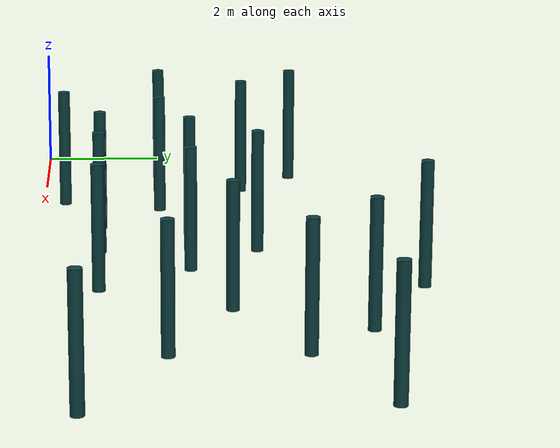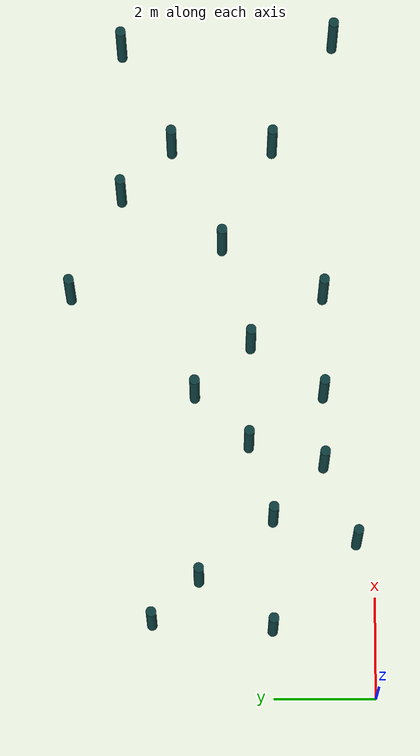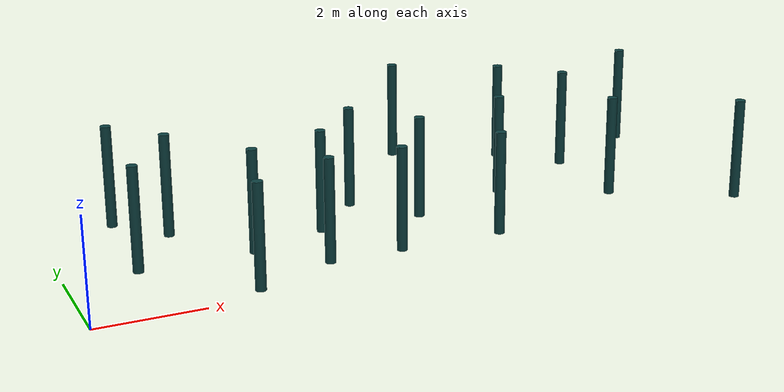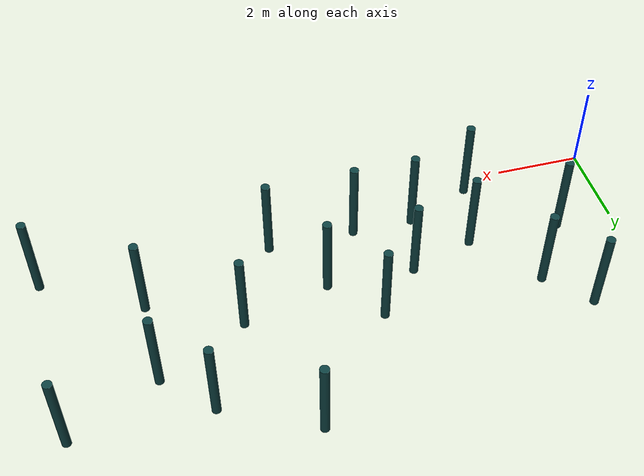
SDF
<sdf version="1.6">
 <world name="default">
  <model name="obstacle">
   <link name="link">
    <inertial>
     <mass>112.569</mass>
     <inertia><ixx>33.2512</ixx><ixy>0</ixy><ixz>0</ixz><iyy>33.2512</iyy><iyz>0</iyz><izz>0.537779</izz></inertia>
    </inertial>
    <visual name="visual">
     <geometry><cylinder><radius>0.1</radius><length>2</length></cylinder></geometry>
     <material>
      <script><name>Gazebo/Grey</name><uri>file://media/materials/scripts/gazebo.material</uri></script>
      <shader type="pixel"><normal_map>__default__</normal_map></shader>
      <ambient>0.05 0.25 0.25 1</ambient>
      <diffuse>0.3 0.3 0.3 1</diffuse>
      <specular>0.01 0.01 0.01 1</specular>
      <emissive>0.1 0.1 0.1 1</emissive>
      <lighting>1</lighting>
     </material>
    </visual>
    <collision name="collision">
     <geometry><cylinder><radius>0.097748</radius><length>1.87509</length></cylinder></geometry>
     <surface>
      <friction>
       <ode><mu>1</mu><mu2>1</mu2><fdir1>0 0 0</fdir1><slip1>0</slip1><slip2>0</slip2></ode>
       <torsional>
        <coefficient>1</coefficient>
        <patch_radius>0</patch_radius>
        <surface_radius>0</surface_radius>
        <use_patch_radius>1</use_patch_radius>
        <ode><slip>0</slip></ode>
       </torsional>
      </friction>
      <bounce><restitution_coefficient>0</restitution_coefficient><threshold>1e+06</threshold></bounce>
      <contact>
       <collide_without_contact>0</collide_without_contact>
       <collide_without_contact_bitmask>1</collide_without_contact_bitmask>
       <collide_bitmask>1</collide_bitmask>
       <ode>
        <soft_cfm>0</soft_cfm>
        <soft_erp>0.2</soft_erp>
        <kp>1e+13</kp>
        <kd>1</kd>
        <max_vel>0.01</max_vel>
        <min_depth>0</min_depth>
       </ode>
       <bullet>
        <split_impulse>1</split_impulse>
        <split_impulse_penetration_threshold>-0.01</split_impulse_penetration_threshold>
        <soft_cfm>0</soft_cfm>
        <soft_erp>0.2</soft_erp>
        <kp>1e+13</kp>
        <kd>1</kd>
       </bullet>
      </contact>
     </surface>
    </collision>
   </link>
   <static>0</static>
   <pose>1.33964 2.01319 0.987545 -2.9e-05 -4.1e-05 0.003651</pose>
  </model>
  <model name="obstacle_clone">
   <link name="link">
    <inertial>
     <mass>112.569</mass>
     <inertia><ixx>33.2512</ixx><ixy>0</ixy><ixz>0</ixz><iyy>33.2512</iyy><iyz>0</iyz><izz>0.537779</izz></inertia>
    </inertial>
    <visual name="visual">
     <geometry><cylinder><radius>0.1</radius><length>2</length></cylinder></geometry>
     <material>
      <script><name>Gazebo/Grey</name><uri>file://media/materials/scripts/gazebo.material</uri></script>
      <shader type="pixel"><normal_map>__default__</normal_map></shader>
      <ambient>0.05 0.25 0.25 1</ambient>
      <diffuse>0.3 0.3 0.3 1</diffuse>
      <specular>0.01 0.01 0.01 1</specular>
      <emissive>0.1 0.1 0.1 1</emissive>
      <lighting>1</lighting>
     </material>
    </visual>
    <collision name="collision">
     <geometry><cylinder><radius>0.097748</radius><length>1.87509</length></cylinder></geometry>
     <surface>
      <friction>
       <ode><mu>1</mu><mu2>1</mu2><fdir1>0 0 0</fdir1><slip1>0</slip1><slip2>0</slip2></ode>
       <torsional>
        <coefficient>1</coefficient>
        <patch_radius>0</patch_radius>
        <surface_radius>0</surface_radius>
        <use_patch_radius>1</use_patch_radius>
        <ode><slip>0</slip></ode>
       </torsional>
      </friction>
      <bounce><restitution_coefficient>0</restitution_coefficient><threshold>1e+06</threshold></bounce>
      <contact>
       <collide_without_contact>0</collide_without_contact>
       <collide_without_contact_bitmask>1</collide_without_contact_bitmask>
       <collide_bitmask>1</collide_bitmask>
       <ode>
        <soft_cfm>0</soft_cfm>
        <soft_erp>0.2</soft_erp>
        <kp>1e+13</kp>
        <kd>1</kd>
        <max_vel>0.01</max_vel>
        <min_depth>0</min_depth>
       </ode>
       <bullet>
        <split_impulse>1</split_impulse>
        <split_impulse_penetration_threshold>-0.01</split_impulse_penetration_threshold>
        <soft_cfm>0</soft_cfm>
        <soft_erp>0.2</soft_erp>
        <kp>1e+13</kp>
        <kd>1</kd>
       </bullet>
      </contact>
     </surface>
    </collision>
   </link>
   <static>0</static>
   <pose>1.459 4.37793 0.987545 -1.9e-05 -4.7e-05 0.003622</pose>
  </model>
  <model name="obstacle_clone_0">
   <link name="link">
    <inertial>
     <mass>112.569</mass>
     <inertia><ixx>33.2512</ixx><ixy>0</ixy><ixz>0</ixz><iyy>33.2512</iyy><iyz>0</iyz><izz>0.537779</izz></inertia>
    </inertial>
    <visual name="visual">
     <geometry><cylinder><radius>0.1</radius><length>2</length></cylinder></geometry>
     <material>
      <script><name>Gazebo/Grey</name><uri>file://media/materials/scripts/gazebo.material</uri></script>
      <shader type="pixel"><normal_map>__default__</normal_map></shader>
      <ambient>0.05 0.25 0.25 1</ambient>
      <diffuse>0.3 0.3 0.3 1</diffuse>
      <specular>0.01 0.01 0.01 1</specular>
      <emissive>0.1 0.1 0.1 1</emissive>
      <lighting>1</lighting>
     </material>
    </visual>
    <collision name="collision">
     <geometry><cylinder><radius>0.097748</radius><length>1.87509</length></cylinder></geometry>
     <surface>
      <friction>
       <ode><mu>1</mu><mu2>1</mu2><fdir1>0 0 0</fdir1><slip1>0</slip1><slip2>0</slip2></ode>
       <torsional>
        <coefficient>1</coefficient>
        <patch_radius>0</patch_radius>
        <surface_radius>0</surface_radius>
        <use_patch_radius>1</use_patch_radius>
        <ode><slip>0</slip></ode>
       </torsional>
      </friction>
      <bounce><restitution_coefficient>0</restitution_coefficient><threshold>1e+06</threshold></bounce>
      <contact>
       <collide_without_contact>0</collide_without_contact>
       <collide_without_contact_bitmask>1</collide_without_contact_bitmask>
       <collide_bitmask>1</collide_bitmask>
       <ode>
        <soft_cfm>0</soft_cfm>
        <soft_erp>0.2</soft_erp>
        <kp>1e+13</kp>
        <kd>1</kd>
        <max_vel>0.01</max_vel>
        <min_depth>0</min_depth>
       </ode>
       <bullet>
        <split_impulse>1</split_impulse>
        <split_impulse_penetration_threshold>-0.01</split_impulse_penetration_threshold>
        <soft_cfm>0</soft_cfm>
        <soft_erp>0.2</soft_erp>
        <kp>1e+13</kp>
        <kd>1</kd>
       </bullet>
      </contact>
     </surface>
    </collision>
   </link>
   <static>0</static>
   <pose>3.50902 1.99999 0.987545 -1.4e-05 -4.5e-05 0.003622</pose>
  </model>
  <model name="obstacle_clone_1">
   <link name="link">
    <inertial>
     <mass>112.569</mass>
     <inertia><ixx>33.2512</ixx><ixy>0</ixy><ixz>0</ixz><iyy>33.2512</iyy><iyz>0</iyz><izz>0.537779</izz></inertia>
    </inertial>
    <visual name="visual">
     <geometry><cylinder><radius>0.1</radius><length>2</length></cylinder></geometry>
     <material>
      <script><name>Gazebo/Grey</name><uri>file://media/materials/scripts/gazebo.material</uri></script>
      <shader type="pixel"><normal_map>__default__</normal_map></shader>
      <ambient>0.05 0.25 0.25 1</ambient>
      <diffuse>0.3 0.3 0.3 1</diffuse>
      <specular>0.01 0.01 0.01 1</specular>
      <emissive>0.1 0.1 0.1 1</emissive>
      <lighting>1</lighting>
     </material>
    </visual>
    <collision name="collision">
     <geometry><cylinder><radius>0.097748</radius><length>1.87509</length></cylinder></geometry>
     <surface>
      <friction>
       <ode><mu>1</mu><mu2>1</mu2><fdir1>0 0 0</fdir1><slip1>0</slip1><slip2>0</slip2></ode>
       <torsional>
        <coefficient>1</coefficient>
        <patch_radius>0</patch_radius>
        <surface_radius>0</surface_radius>
        <use_patch_radius>1</use_patch_radius>
        <ode><slip>0</slip></ode>
       </torsional>
      </friction>
      <bounce><restitution_coefficient>0</restitution_coefficient><threshold>1e+06</threshold></bounce>
      <contact>
       <collide_without_contact>0</collide_without_contact>
       <collide_without_contact_bitmask>1</collide_without_contact_bitmask>
       <collide_bitmask>1</collide_bitmask>
       <ode>
        <soft_cfm>0</soft_cfm>
        <soft_erp>0.2</soft_erp>
        <kp>1e+13</kp>
        <kd>1</kd>
        <max_vel>0.01</max_vel>
        <min_depth>0</min_depth>
       </ode>
       <bullet>
        <split_impulse>1</split_impulse>
        <split_impulse_penetration_threshold>-0.01</split_impulse_penetration_threshold>
        <soft_cfm>0</soft_cfm>
        <soft_erp>0.2</soft_erp>
        <kp>1e+13</kp>
        <kd>1</kd>
       </bullet>
      </contact>
     </surface>
    </collision>
   </link>
   <static>0</static>
   <pose>5.00029 2.47454 0.987551 -5.9e-05 2.9e-05 0.006021</pose>
  </model>
  <model name="obstacle_clone_4">
   <link name="link">
    <inertial>
     <mass>112.569</mass>
     <inertia><ixx>33.2512</ixx><ixy>0</ixy><ixz>0</ixz><iyy>33.2512</iyy><iyz>0</iyz><izz>0.537779</izz></inertia>
    </inertial>
    <visual name="visual">
     <geometry><cylinder><radius>0.1</radius><length>2</length></cylinder></geometry>
     <material>
      <script><name>Gazebo/Grey</name><uri>file://media/materials/scripts/gazebo.material</uri></script>
      <shader type="pixel"><normal_map>__default__</normal_map></shader>
      <ambient>0.05 0.25 0.25 1</ambient>
      <diffuse>0.3 0.3 0.3 1</diffuse>
      <specular>0.01 0.01 0.01 1</specular>
      <emissive>0.1 0.1 0.1 1</emissive>
      <lighting>1</lighting>
     </material>
    </visual>
    <collision name="collision">
     <geometry><cylinder><radius>0.097748</radius><length>1.87509</length></cylinder></geometry>
     <surface>
      <friction>
       <ode><mu>1</mu><mu2>1</mu2><fdir1>0 0 0</fdir1><slip1>0</slip1><slip2>0</slip2></ode>
       <torsional>
        <coefficient>1</coefficient>
        <patch_radius>0</patch_radius>
        <surface_radius>0</surface_radius>
        <use_patch_radius>1</use_patch_radius>
        <ode><slip>0</slip></ode>
       </torsional>
      </friction>
      <bounce><restitution_coefficient>0</restitution_coefficient><threshold>1e+06</threshold></bounce>
      <contact>
       <collide_without_contact>0</collide_without_contact>
       <collide_without_contact_bitmask>1</collide_without_contact_bitmask>
       <collide_bitmask>1</collide_bitmask>
       <ode>
        <soft_cfm>0</soft_cfm>
        <soft_erp>0.2</soft_erp>
        <kp>1e+13</kp>
        <kd>1</kd>
        <max_vel>0.01</max_vel>
        <min_depth>0</min_depth>
       </ode>
       <bullet>
        <split_impulse>1</split_impulse>
        <split_impulse_penetration_threshold>-0.01</split_impulse_penetration_threshold>
        <soft_cfm>0</soft_cfm>
        <soft_erp>0.2</soft_erp>
        <kp>1e+13</kp>
        <kd>1</kd>
       </bullet>
      </contact>
     </surface>
    </collision>
   </link>
   <static>0</static>
   <pose>7.00029 2.43389 0.987541 -5.3e-05 2.5e-05 0.005888</pose>
  </model>
  <model name="obstacle_clone_7">
   <link name="link">
    <inertial>
     <mass>112.569</mass>
     <inertia><ixx>33.2512</ixx><ixy>0</ixy><ixz>0</ixz><iyy>33.2512</iyy><iyz>0</iyz><izz>0.537779</izz></inertia>
    </inertial>
    <visual name="visual">
     <geometry><cylinder><radius>0.1</radius><length>2</length></cylinder></geometry>
     <material>
      <script><name>Gazebo/Grey</name><uri>file://media/materials/scripts/gazebo.material</uri></script>
      <shader type="pixel"><normal_map>__default__</normal_map></shader>
      <ambient>0.05 0.25 0.25 1</ambient>
      <diffuse>0.3 0.3 0.3 1</diffuse>
      <specular>0.01 0.01 0.01 1</specular>
      <emissive>0.1 0.1 0.1 1</emissive>
      <lighting>1</lighting>
     </material>
    </visual>
    <collision name="collision">
     <geometry><cylinder><radius>0.097748</radius><length>1.87509</length></cylinder></geometry>
     <surface>
      <friction>
       <ode><mu>1</mu><mu2>1</mu2><fdir1>0 0 0</fdir1><slip1>0</slip1><slip2>0</slip2></ode>
       <torsional>
        <coefficient>1</coefficient>
        <patch_radius>0</patch_radius>
        <surface_radius>0</surface_radius>
        <use_patch_radius>1</use_patch_radius>
        <ode><slip>0</slip></ode>
       </torsional>
      </friction>
      <bounce><restitution_coefficient>0</restitution_coefficient><threshold>1e+06</threshold></bounce>
      <contact>
       <collide_without_contact>0</collide_without_contact>
       <collide_without_contact_bitmask>1</collide_without_contact_bitmask>
       <collide_bitmask>1</collide_bitmask>
       <ode>
        <soft_cfm>0</soft_cfm>
        <soft_erp>0.2</soft_erp>
        <kp>1e+13</kp>
        <kd>1</kd>
        <max_vel>0.01</max_vel>
        <min_depth>0</min_depth>
       </ode>
       <bullet>
        <split_impulse>1</split_impulse>
        <split_impulse_penetration_threshold>-0.01</split_impulse_penetration_threshold>
        <soft_cfm>0</soft_cfm>
        <soft_erp>0.2</soft_erp>
        <kp>1e+13</kp>
        <kd>1</kd>
       </bullet>
      </contact>
     </surface>
    </collision>
   </link>
   <static>0</static>
   <pose>2.31369 3.4611 0.987545 -3.3e-05 -3.9e-05 0.00461</pose>
  </model>
  <model name="obstacle_clone_9">
   <link name="link">
    <inertial>
     <mass>112.569</mass>
     <inertia><ixx>33.2512</ixx><ixy>0</ixy><ixz>0</ixz><iyy>33.2512</iyy><iyz>0</iyz><izz>0.537779</izz></inertia>
    </inertial>
    <visual name="visual">
     <geometry><cylinder><radius>0.1</radius><length>2</length></cylinder></geometry>
     <material>
      <script><name>Gazebo/Grey</name><uri>file://media/materials/scripts/gazebo.material</uri></script>
      <shader type="pixel"><normal_map>__default__</normal_map></shader>
      <ambient>0.05 0.25 0.25 1</ambient>
      <diffuse>0.3 0.3 0.3 1</diffuse>
      <specular>0.01 0.01 0.01 1</specular>
      <emissive>0.1 0.1 0.1 1</emissive>
      <lighting>1</lighting>
     </material>
    </visual>
    <collision name="collision">
     <geometry><cylinder><radius>0.097748</radius><length>1.87509</length></cylinder></geometry>
     <surface>
      <friction>
       <ode><mu>1</mu><mu2>1</mu2><fdir1>0 0 0</fdir1><slip1>0</slip1><slip2>0</slip2></ode>
       <torsional>
        <coefficient>1</coefficient>
        <patch_radius>0</patch_radius>
        <surface_radius>0</surface_radius>
        <use_patch_radius>1</use_patch_radius>
        <ode><slip>0</slip></ode>
       </torsional>
      </friction>
      <bounce><restitution_coefficient>0</restitution_coefficient><threshold>1e+06</threshold></bounce>
      <contact>
       <collide_without_contact>0</collide_without_contact>
       <collide_without_contact_bitmask>1</collide_without_contact_bitmask>
       <collide_bitmask>1</collide_bitmask>
       <ode>
        <soft_cfm>0</soft_cfm>
        <soft_erp>0.2</soft_erp>
        <kp>1e+13</kp>
        <kd>1</kd>
        <max_vel>0.01</max_vel>
        <min_depth>0</min_depth>
       </ode>
       <bullet>
        <split_impulse>1</split_impulse>
        <split_impulse_penetration_threshold>-0.01</split_impulse_penetration_threshold>
        <soft_cfm>0</soft_cfm>
        <soft_erp>0.2</soft_erp>
        <kp>1e+13</kp>
        <kd>1</kd>
       </bullet>
      </contact>
     </surface>
    </collision>
   </link>
   <static>0</static>
   <pose>6.00027 3.54125 0.987541 -5e-05 2.4e-05 0.005878</pose>
  </model>
  <model name="obstacle_clone_11">
   <link name="link">
    <inertial>
     <mass>112.569</mass>
     <inertia><ixx>33.2512</ixx><ixy>0</ixy><ixz>0</ixz><iyy>33.2512</iyy><iyz>0</iyz><izz>0.537779</izz></inertia>
    </inertial>
    <visual name="visual">
     <geometry><cylinder><radius>0.1</radius><length>2</length></cylinder></geometry>
     <material>
      <script><name>Gazebo/Grey</name><uri>file://media/materials/scripts/gazebo.material</uri></script>
      <shader type="pixel"><normal_map>__default__</normal_map></shader>
      <ambient>0.05 0.25 0.25 1</ambient>
      <diffuse>0.3 0.3 0.3 1</diffuse>
      <specular>0.01 0.01 0.01 1</specular>
      <emissive>0.1 0.1 0.1 1</emissive>
      <lighting>1</lighting>
     </material>
    </visual>
    <collision name="collision">
     <geometry><cylinder><radius>0.097748</radius><length>1.87509</length></cylinder></geometry>
     <surface>
      <friction>
       <ode><mu>1</mu><mu2>1</mu2><fdir1>0 0 0</fdir1><slip1>0</slip1><slip2>0</slip2></ode>
       <torsional>
        <coefficient>1</coefficient>
        <patch_radius>0</patch_radius>
        <surface_radius>0</surface_radius>
        <use_patch_radius>1</use_patch_radius>
        <ode><slip>0</slip></ode>
       </torsional>
      </friction>
      <bounce><restitution_coefficient>0</restitution_coefficient><threshold>1e+06</threshold></bounce>
      <contact>
       <collide_without_contact>0</collide_without_contact>
       <collide_without_contact_bitmask>1</collide_without_contact_bitmask>
       <collide_bitmask>1</collide_bitmask>
       <ode>
        <soft_cfm>0</soft_cfm>
        <soft_erp>0.2</soft_erp>
        <kp>1e+13</kp>
        <kd>1</kd>
        <max_vel>0.01</max_vel>
        <min_depth>0</min_depth>
       </ode>
       <bullet>
        <split_impulse>1</split_impulse>
        <split_impulse_penetration_threshold>-0.01</split_impulse_penetration_threshold>
        <soft_cfm>0</soft_cfm>
        <soft_erp>0.2</soft_erp>
        <kp>1e+13</kp>
        <kd>1</kd>
       </bullet>
      </contact>
     </surface>
    </collision>
   </link>
   <static>0</static>
   <pose>9.00028 3.00007 0.987551 -5.6e-05 2.6e-05 0.005904</pose>
  </model>
  <model name="obstacle_clone_13">
   <link name="link">
    <inertial>
     <mass>112.569</mass>
     <inertia><ixx>33.2512</ixx><ixy>0</ixy><ixz>0</ixz><iyy>33.2512</iyy><iyz>0</iyz><izz>0.537779</izz></inertia>
    </inertial>
    <visual name="visual">
     <geometry><cylinder><radius>0.1</radius><length>2</length></cylinder></geometry>
     <material>
      <script><name>Gazebo/Grey</name><uri>file://media/materials/scripts/gazebo.material</uri></script>
      <shader type="pixel"><normal_map>__default__</normal_map></shader>
      <ambient>0.05 0.25 0.25 1</ambient>
      <diffuse>0.3 0.3 0.3 1</diffuse>
      <specular>0.01 0.01 0.01 1</specular>
      <emissive>0.1 0.1 0.1 1</emissive>
      <lighting>1</lighting>
     </material>
    </visual>
    <collision name="collision">
     <geometry><cylinder><radius>0.097748</radius><length>1.87509</length></cylinder></geometry>
     <surface>
      <friction>
       <ode><mu>1</mu><mu2>1</mu2><fdir1>0 0 0</fdir1><slip1>0</slip1><slip2>0</slip2></ode>
       <torsional>
        <coefficient>1</coefficient>
        <patch_radius>0</patch_radius>
        <surface_radius>0</surface_radius>
        <use_patch_radius>1</use_patch_radius>
        <ode><slip>0</slip></ode>
       </torsional>
      </friction>
      <bounce><restitution_coefficient>0</restitution_coefficient><threshold>1e+06</threshold></bounce>
      <contact>
       <collide_without_contact>0</collide_without_contact>
       <collide_without_contact_bitmask>1</collide_without_contact_bitmask>
       <collide_bitmask>1</collide_bitmask>
       <ode>
        <soft_cfm>0</soft_cfm>
        <soft_erp>0.2</soft_erp>
        <kp>1e+13</kp>
        <kd>1</kd>
        <max_vel>0.01</max_vel>
        <min_depth>0</min_depth>
       </ode>
       <bullet>
        <split_impulse>1</split_impulse>
        <split_impulse_penetration_threshold>-0.01</split_impulse_penetration_threshold>
        <soft_cfm>0</soft_cfm>
        <soft_erp>0.2</soft_erp>
        <kp>1e+13</kp>
        <kd>1</kd>
       </bullet>
      </contact>
     </surface>
    </collision>
   </link>
   <static>0</static>
   <pose>3.05155 0.364415 0.987545 -3.2e-05 -3.9e-05 0.003615</pose>
  </model>
  <model name="obstacle_clone_14">
   <link name="link">
    <inertial>
     <mass>112.569</mass>
     <inertia><ixx>33.2512</ixx><ixy>0</ixy><ixz>0</ixz><iyy>33.2512</iyy><iyz>0</iyz><izz>0.537779</izz></inertia>
    </inertial>
    <visual name="visual">
     <geometry><cylinder><radius>0.1</radius><length>2</length></cylinder></geometry>
     <material>
      <script><name>Gazebo/Grey</name><uri>file://media/materials/scripts/gazebo.material</uri></script>
      <shader type="pixel"><normal_map>__default__</normal_map></shader>
      <ambient>0.05 0.25 0.25 1</ambient>
      <diffuse>0.3 0.3 0.3 1</diffuse>
      <specular>0.01 0.01 0.01 1</specular>
      <emissive>0.1 0.1 0.1 1</emissive>
      <lighting>1</lighting>
     </material>
    </visual>
    <collision name="collision">
     <geometry><cylinder><radius>0.097748</radius><length>1.87509</length></cylinder></geometry>
     <surface>
      <friction>
       <ode><mu>1</mu><mu2>1</mu2><fdir1>0 0 0</fdir1><slip1>0</slip1><slip2>0</slip2></ode>
       <torsional>
        <coefficient>1</coefficient>
        <patch_radius>0</patch_radius>
        <surface_radius>0</surface_radius>
        <use_patch_radius>1</use_patch_radius>
        <ode><slip>0</slip></ode>
       </torsional>
      </friction>
      <bounce><restitution_coefficient>0</restitution_coefficient><threshold>1e+06</threshold></bounce>
      <contact>
       <collide_without_contact>0</collide_without_contact>
       <collide_without_contact_bitmask>1</collide_without_contact_bitmask>
       <collide_bitmask>1</collide_bitmask>
       <ode>
        <soft_cfm>0</soft_cfm>
        <soft_erp>0.2</soft_erp>
        <kp>1e+13</kp>
        <kd>1</kd>
        <max_vel>0.01</max_vel>
        <min_depth>0</min_depth>
       </ode>
       <bullet>
        <split_impulse>1</split_impulse>
        <split_impulse_penetration_threshold>-0.01</split_impulse_penetration_threshold>
        <soft_cfm>0</soft_cfm>
        <soft_erp>0.2</soft_erp>
        <kp>1e+13</kp>
        <kd>1</kd>
       </bullet>
      </contact>
     </surface>
    </collision>
   </link>
   <static>0</static>
   <pose>4.5914 1.00006 0.987551 -5.8e-05 2.5e-05 0.005488</pose>
  </model>
  <model name="obstacle_clone_21">
   <link name="link">
    <inertial>
     <mass>112.569</mass>
     <inertia><ixx>33.2512</ixx><ixy>0</ixy><ixz>0</ixz><iyy>33.2512</iyy><iyz>0</iyz><izz>0.537779</izz></inertia>
    </inertial>
    <visual name="visual">
     <geometry><cylinder><radius>0.1</radius><length>2</length></cylinder></geometry>
     <material>
      <script><name>Gazebo/Grey</name><uri>file://media/materials/scripts/gazebo.material</uri></script>
      <shader type="pixel"><normal_map>__default__</normal_map></shader>
      <ambient>0.05 0.25 0.25 1</ambient>
      <diffuse>0.3 0.3 0.3 1</diffuse>
      <specular>0.01 0.01 0.01 1</specular>
      <emissive>0.1 0.1 0.1 1</emissive>
      <lighting>1</lighting>
     </material>
    </visual>
    <collision name="collision">
     <geometry><cylinder><radius>0.097748</radius><length>1.87509</length></cylinder></geometry>
     <surface>
      <friction>
       <ode><mu>1</mu><mu2>1</mu2><fdir1>0 0 0</fdir1><slip1>0</slip1><slip2>0</slip2></ode>
       <torsional>
        <coefficient>1</coefficient>
        <patch_radius>0</patch_radius>
        <surface_radius>0</surface_radius>
        <use_patch_radius>1</use_patch_radius>
        <ode><slip>0</slip></ode>
       </torsional>
      </friction>
      <bounce><restitution_coefficient>0</restitution_coefficient><threshold>1e+06</threshold></bounce>
      <contact>
       <collide_without_contact>0</collide_without_contact>
       <collide_without_contact_bitmask>1</collide_without_contact_bitmask>
       <collide_bitmask>1</collide_bitmask>
       <ode>
        <soft_cfm>0</soft_cfm>
        <soft_erp>0.2</soft_erp>
        <kp>1e+13</kp>
        <kd>1</kd>
        <max_vel>0.01</max_vel>
        <min_depth>0</min_depth>
       </ode>
       <bullet>
        <split_impulse>1</split_impulse>
        <split_impulse_penetration_threshold>-0.01</split_impulse_penetration_threshold>
        <soft_cfm>0</soft_cfm>
        <soft_erp>0.2</soft_erp>
        <kp>1e+13</kp>
        <kd>1</kd>
       </bullet>
      </contact>
     </surface>
    </collision>
   </link>
   <static>0</static>
   <pose>10.0002 5.00005 0.987551 -5.9e-05 2.4e-05 0.005685</pose>
  </model>
  <model name="obstacle_clone_22">
   <link name="link">
    <inertial>
     <mass>112.569</mass>
     <inertia><ixx>33.2512</ixx><ixy>0</ixy><ixz>0</ixz><iyy>33.2512</iyy><iyz>0</iyz><izz>0.537779</izz></inertia>
    </inertial>
    <visual name="visual">
     <geometry><cylinder><radius>0.1</radius><length>2</length></cylinder></geometry>
     <material>
      <script><name>Gazebo/Grey</name><uri>file://media/materials/scripts/gazebo.material</uri></script>
      <shader type="pixel"><normal_map>__default__</normal_map></shader>
      <ambient>0.05 0.25 0.25 1</ambient>
      <diffuse>0.3 0.3 0.3 1</diffuse>
      <specular>0.01 0.01 0.01 1</specular>
      <emissive>0.1 0.1 0.1 1</emissive>
      <lighting>1</lighting>
     </material>
    </visual>
    <collision name="collision">
     <geometry><cylinder><radius>0.097748</radius><length>1.87509</length></cylinder></geometry>
     <surface>
      <friction>
       <ode><mu>1</mu><mu2>1</mu2><fdir1>0 0 0</fdir1><slip1>0</slip1><slip2>0</slip2></ode>
       <torsional>
        <coefficient>1</coefficient>
        <patch_radius>0</patch_radius>
        <surface_radius>0</surface_radius>
        <use_patch_radius>1</use_patch_radius>
        <ode><slip>0</slip></ode>
       </torsional>
      </friction>
      <bounce><restitution_coefficient>0</restitution_coefficient><threshold>1e+06</threshold></bounce>
      <contact>
       <collide_without_contact>0</collide_without_contact>
       <collide_without_contact_bitmask>1</collide_without_contact_bitmask>
       <collide_bitmask>1</collide_bitmask>
       <ode>
        <soft_cfm>0</soft_cfm>
        <soft_erp>0.2</soft_erp>
        <kp>1e+13</kp>
        <kd>1</kd>
        <max_vel>0.01</max_vel>
        <min_depth>0</min_depth>
       </ode>
       <bullet>
        <split_impulse>1</split_impulse>
        <split_impulse_penetration_threshold>-0.01</split_impulse_penetration_threshold>
        <soft_cfm>0</soft_cfm>
        <soft_erp>0.2</soft_erp>
        <kp>1e+13</kp>
        <kd>1</kd>
       </bullet>
      </contact>
     </surface>
    </collision>
   </link>
   <static>0</static>
   <pose>8.00025 6.00005 0.987541 -5.4e-05 2.7e-05 0.005527</pose>
  </model>
  <model name="obstacle_clone_23">
   <link name="link">
    <inertial>
     <mass>112.569</mass>
     <inertia><ixx>33.2512</ixx><ixy>0</ixy><ixz>0</ixz><iyy>33.2512</iyy><iyz>0</iyz><izz>0.537779</izz></inertia>
    </inertial>
    <visual name="visual">
     <geometry><cylinder><radius>0.1</radius><length>2</length></cylinder></geometry>
     <material>
      <script><name>Gazebo/Grey</name><uri>file://media/materials/scripts/gazebo.material</uri></script>
      <shader type="pixel"><normal_map>__default__</normal_map></shader>
      <ambient>0.05 0.25 0.25 1</ambient>
      <diffuse>0.3 0.3 0.3 1</diffuse>
      <specular>0.01 0.01 0.01 1</specular>
      <emissive>0.1 0.1 0.1 1</emissive>
      <lighting>1</lighting>
     </material>
    </visual>
    <collision name="collision">
     <geometry><cylinder><radius>0.097748</radius><length>1.87509</length></cylinder></geometry>
     <surface>
      <friction>
       <ode><mu>1</mu><mu2>1</mu2><fdir1>0 0 0</fdir1><slip1>0</slip1><slip2>0</slip2></ode>
       <torsional>
        <coefficient>1</coefficient>
        <patch_radius>0</patch_radius>
        <surface_radius>0</surface_radius>
        <use_patch_radius>1</use_patch_radius>
        <ode><slip>0</slip></ode>
       </torsional>
      </friction>
      <bounce><restitution_coefficient>0</restitution_coefficient><threshold>1e+06</threshold></bounce>
      <contact>
       <collide_without_contact>0</collide_without_contact>
       <collide_without_contact_bitmask>1</collide_without_contact_bitmask>
       <collide_bitmask>1</collide_bitmask>
       <ode>
        <soft_cfm>0</soft_cfm>
        <soft_erp>0.2</soft_erp>
        <kp>1e+13</kp>
        <kd>1</kd>
        <max_vel>0.01</max_vel>
        <min_depth>0</min_depth>
       </ode>
       <bullet>
        <split_impulse>1</split_impulse>
        <split_impulse_penetration_threshold>-0.01</split_impulse_penetration_threshold>
        <soft_cfm>0</soft_cfm>
        <soft_erp>0.2</soft_erp>
        <kp>1e+13</kp>
        <kd>1</kd>
       </bullet>
      </contact>
     </surface>
    </collision>
   </link>
   <static>0</static>
   <pose>11.0002 2.00005 0.98754 -4.7e-05 2.2e-05 0.005484</pose>
  </model>
  <model name="obstacle_clone_24">
   <link name="link">
    <inertial>
     <mass>112.569</mass>
     <inertia><ixx>33.2512</ixx><ixy>0</ixy><ixz>0</ixz><iyy>33.2512</iyy><iyz>0</iyz><izz>0.537779</izz></inertia>
    </inertial>
    <visual name="visual">
     <geometry><cylinder><radius>0.1</radius><length>2</length></cylinder></geometry>
     <material>
      <script><name>Gazebo/Grey</name><uri>file://media/materials/scripts/gazebo.material</uri></script>
      <shader type="pixel"><normal_map>__default__</normal_map></shader>
      <ambient>0.05 0.25 0.25 1</ambient>
      <diffuse>0.3 0.3 0.3 1</diffuse>
      <specular>0.01 0.01 0.01 1</specular>
      <emissive>0.1 0.1 0.1 1</emissive>
      <lighting>1</lighting>
     </material>
    </visual>
    <collision name="collision">
     <geometry><cylinder><radius>0.097748</radius><length>1.87509</length></cylinder></geometry>
     <surface>
      <friction>
       <ode><mu>1</mu><mu2>1</mu2><fdir1>0 0 0</fdir1><slip1>0</slip1><slip2>0</slip2></ode>
       <torsional>
        <coefficient>1</coefficient>
        <patch_radius>0</patch_radius>
        <surface_radius>0</surface_radius>
        <use_patch_radius>1</use_patch_radius>
        <ode><slip>0</slip></ode>
       </torsional>
      </friction>
      <bounce><restitution_coefficient>0</restitution_coefficient><threshold>1e+06</threshold></bounce>
      <contact>
       <collide_without_contact>0</collide_without_contact>
       <collide_without_contact_bitmask>1</collide_without_contact_bitmask>
       <collide_bitmask>1</collide_bitmask>
       <ode>
        <soft_cfm>0</soft_cfm>
        <soft_erp>0.2</soft_erp>
        <kp>1e+13</kp>
        <kd>1</kd>
        <max_vel>0.01</max_vel>
        <min_depth>0</min_depth>
       </ode>
       <bullet>
        <split_impulse>1</split_impulse>
        <split_impulse_penetration_threshold>-0.01</split_impulse_penetration_threshold>
        <soft_cfm>0</soft_cfm>
        <soft_erp>0.2</soft_erp>
        <kp>1e+13</kp>
        <kd>1</kd>
       </bullet>
      </contact>
     </surface>
    </collision>
   </link>
   <static>0</static>
   <pose>8.00025 1.00005 0.987551 -5.6e-05 2.7e-05 0.005585</pose>
  </model>
  <model name="obstacle_clone_25">
   <link name="link">
    <inertial>
     <mass>112.569</mass>
     <inertia><ixx>33.2512</ixx><ixy>0</ixy><ixz>0</ixz><iyy>33.2512</iyy><iyz>0</iyz><izz>0.537779</izz></inertia>
    </inertial>
    <visual name="visual">
     <geometry><cylinder><radius>0.1</radius><length>2</length></cylinder></geometry>
     <material>
      <script><name>Gazebo/Grey</name><uri>file://media/materials/scripts/gazebo.material</uri></script>
      <shader type="pixel"><normal_map>__default__</normal_map></shader>
      <ambient>0.05 0.25 0.25 1</ambient>
      <diffuse>0.3 0.3 0.3 1</diffuse>
      <specular>0.01 0.01 0.01 1</specular>
      <emissive>0.1 0.1 0.1 1</emissive>
      <lighting>1</lighting>
     </material>
    </visual>
    <collision name="collision">
     <geometry><cylinder><radius>0.097748</radius><length>1.87509</length></cylinder></geometry>
     <surface>
      <friction>
       <ode><mu>1</mu><mu2>1</mu2><fdir1>0 0 0</fdir1><slip1>0</slip1><slip2>0</slip2></ode>
       <torsional>
        <coefficient>1</coefficient>
        <patch_radius>0</patch_radius>
        <surface_radius>0</surface_radius>
        <use_patch_radius>1</use_patch_radius>
        <ode><slip>0</slip></ode>
       </torsional>
      </friction>
      <bounce><restitution_coefficient>0</restitution_coefficient><threshold>1e+06</threshold></bounce>
      <contact>
       <collide_without_contact>0</collide_without_contact>
       <collide_without_contact_bitmask>1</collide_without_contact_bitmask>
       <collide_bitmask>1</collide_bitmask>
       <ode>
        <soft_cfm>0</soft_cfm>
        <soft_erp>0.2</soft_erp>
        <kp>1e+13</kp>
        <kd>1</kd>
        <max_vel>0.01</max_vel>
        <min_depth>0</min_depth>
       </ode>
       <bullet>
        <split_impulse>1</split_impulse>
        <split_impulse_penetration_threshold>-0.01</split_impulse_penetration_threshold>
        <soft_cfm>0</soft_cfm>
        <soft_erp>0.2</soft_erp>
        <kp>1e+13</kp>
        <kd>1</kd>
       </bullet>
      </contact>
     </surface>
    </collision>
   </link>
   <static>0</static>
   <pose>6.00024 1.00005 0.987551 -6e-05 2.6e-05 0.00543</pose>
  </model>
  <model name="obstacle_clone_26">
   <link name="link">
    <inertial>
     <mass>112.569</mass>
     <inertia><ixx>33.2512</ixx><ixy>0</ixy><ixz>0</ixz><iyy>33.2512</iyy><iyz>0</iyz><izz>0.537779</izz></inertia>
    </inertial>
    <visual name="visual">
     <geometry><cylinder><radius>0.1</radius><length>2</length></cylinder></geometry>
     <material>
      <script><name>Gazebo/Grey</name><uri>file://media/materials/scripts/gazebo.material</uri></script>
      <shader type="pixel"><normal_map>__default__</normal_map></shader>
      <ambient>0.05 0.25 0.25 1</ambient>
      <diffuse>0.3 0.3 0.3 1</diffuse>
      <specular>0.01 0.01 0.01 1</specular>
      <emissive>0.1 0.1 0.1 1</emissive>
      <lighting>1</lighting>
     </material>
    </visual>
    <collision name="collision">
     <geometry><cylinder><radius>0.097748</radius><length>1.87509</length></cylinder></geometry>
     <surface>
      <friction>
       <ode><mu>1</mu><mu2>1</mu2><fdir1>0 0 0</fdir1><slip1>0</slip1><slip2>0</slip2></ode>
       <torsional>
        <coefficient>1</coefficient>
        <patch_radius>0</patch_radius>
        <surface_radius>0</surface_radius>
        <use_patch_radius>1</use_patch_radius>
        <ode><slip>0</slip></ode>
       </torsional>
      </friction>
      <bounce><restitution_coefficient>0</restitution_coefficient><threshold>1e+06</threshold></bounce>
      <contact>
       <collide_without_contact>0</collide_without_contact>
       <collide_without_contact_bitmask>1</collide_without_contact_bitmask>
       <collide_bitmask>1</collide_bitmask>
       <ode>
        <soft_cfm>0</soft_cfm>
        <soft_erp>0.2</soft_erp>
        <kp>1e+13</kp>
        <kd>1</kd>
        <max_vel>0.01</max_vel>
        <min_depth>0</min_depth>
       </ode>
       <bullet>
        <split_impulse>1</split_impulse>
        <split_impulse_penetration_threshold>-0.01</split_impulse_penetration_threshold>
        <soft_cfm>0</soft_cfm>
        <soft_erp>0.2</soft_erp>
        <kp>1e+13</kp>
        <kd>1</kd>
       </bullet>
      </contact>
     </surface>
    </collision>
   </link>
   <static>0</static>
   <pose>13.0002 5.00006 0.987541 -5.9e-05 2.4e-05 0.00537</pose>
  </model>
  <model name="obstacle_clone_29">
   <link name="link">
    <inertial>
     <mass>112.569</mass>
     <inertia><ixx>33.2512</ixx><ixy>0</ixy><ixz>0</ixz><iyy>33.2512</iyy><iyz>0</iyz><izz>0.537779</izz></inertia>
    </inertial>
    <visual name="visual">
     <geometry><cylinder><radius>0.1</radius><length>2</length></cylinder></geometry>
     <material>
      <script><name>Gazebo/Grey</name><uri>file://media/materials/scripts/gazebo.material</uri></script>
      <shader type="pixel"><normal_map>__default__</normal_map></shader>
      <ambient>0.05 0.25 0.25 1</ambient>
      <diffuse>0.3 0.3 0.3 1</diffuse>
      <specular>0.01 0.01 0.01 1</specular>
      <emissive>0.1 0.1 0.1 1</emissive>
      <lighting>1</lighting>
     </material>
    </visual>
    <collision name="collision">
     <geometry><cylinder><radius>0.097748</radius><length>1.87509</length></cylinder></geometry>
     <surface>
      <friction>
       <ode><mu>1</mu><mu2>1</mu2><fdir1>0 0 0</fdir1><slip1>0</slip1><slip2>0</slip2></ode>
       <torsional>
        <coefficient>1</coefficient>
        <patch_radius>0</patch_radius>
        <surface_radius>0</surface_radius>
        <use_patch_radius>1</use_patch_radius>
        <ode><slip>0</slip></ode>
       </torsional>
      </friction>
      <bounce><restitution_coefficient>0</restitution_coefficient><threshold>1e+06</threshold></bounce>
      <contact>
       <collide_without_contact>0</collide_without_contact>
       <collide_without_contact_bitmask>1</collide_without_contact_bitmask>
       <collide_bitmask>1</collide_bitmask>
       <ode>
        <soft_cfm>0</soft_cfm>
        <soft_erp>0.2</soft_erp>
        <kp>1e+13</kp>
        <kd>1</kd>
        <max_vel>0.01</max_vel>
        <min_depth>0</min_depth>
       </ode>
       <bullet>
        <split_impulse>1</split_impulse>
        <split_impulse_penetration_threshold>-0.01</split_impulse_penetration_threshold>
        <soft_cfm>0</soft_cfm>
        <soft_erp>0.2</soft_erp>
        <kp>1e+13</kp>
        <kd>1</kd>
       </bullet>
      </contact>
     </surface>
    </collision>
   </link>
   <static>0</static>
   <pose>11.0002 4.00005 0.987551 -6.2e-05 2.8e-05 0.005208</pose>
  </model>
  <model name="obstacle_clone_31">
   <link name="link">
    <inertial>
     <mass>112.569</mass>
     <inertia><ixx>33.2512</ixx><ixy>0</ixy><ixz>0</ixz><iyy>33.2512</iyy><iyz>0</iyz><izz>0.537779</izz></inertia>
    </inertial>
    <visual name="visual">
     <geometry><cylinder><radius>0.1</radius><length>2</length></cylinder></geometry>
     <material>
      <script><name>Gazebo/Grey</name><uri>file://media/materials/scripts/gazebo.material</uri></script>
      <shader type="pixel"><normal_map>__default__</normal_map></shader>
      <ambient>0.05 0.25 0.25 1</ambient>
      <diffuse>0.3 0.3 0.3 1</diffuse>
      <specular>0.01 0.01 0.01 1</specular>
      <emissive>0.1 0.1 0.1 1</emissive>
      <lighting>1</lighting>
     </material>
    </visual>
    <collision name="collision">
     <geometry><cylinder><radius>0.097748</radius><length>1.87509</length></cylinder></geometry>
     <surface>
      <friction>
       <ode><mu>1</mu><mu2>1</mu2><fdir1>0 0 0</fdir1><slip1>0</slip1><slip2>0</slip2></ode>
       <torsional>
        <coefficient>1</coefficient>
        <patch_radius>0</patch_radius>
        <surface_radius>0</surface_radius>
        <use_patch_radius>1</use_patch_radius>
        <ode><slip>0</slip></ode>
       </torsional>
      </friction>
      <bounce><restitution_coefficient>0</restitution_coefficient><threshold>1e+06</threshold></bounce>
      <contact>
       <collide_without_contact>0</collide_without_contact>
       <collide_without_contact_bitmask>1</collide_without_contact_bitmask>
       <collide_bitmask>1</collide_bitmask>
       <ode>
        <soft_cfm>0</soft_cfm>
        <soft_erp>0.2</soft_erp>
        <kp>1e+13</kp>
        <kd>1</kd>
        <max_vel>0.01</max_vel>
        <min_depth>0</min_depth>
       </ode>
       <bullet>
        <split_impulse>1</split_impulse>
        <split_impulse_penetration_threshold>-0.01</split_impulse_penetration_threshold>
        <soft_cfm>0</soft_cfm>
        <soft_erp>0.2</soft_erp>
        <kp>1e+13</kp>
        <kd>1</kd>
       </bullet>
      </contact>
     </surface>
    </collision>
   </link>
   <static>0</static>
   <pose>13.1789 0.785866 0.98755 -5.8e-05 2.6e-05 0.005128</pose>
  </model>
 </world>
</sdf>
